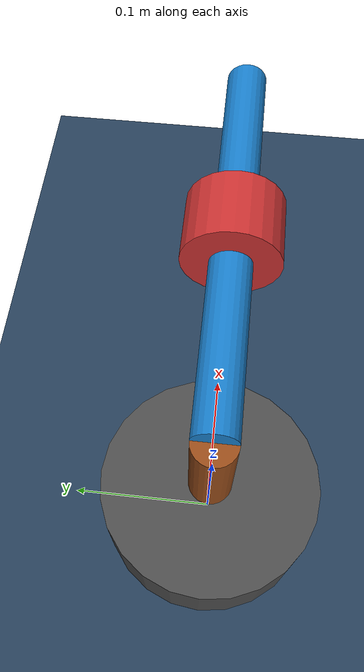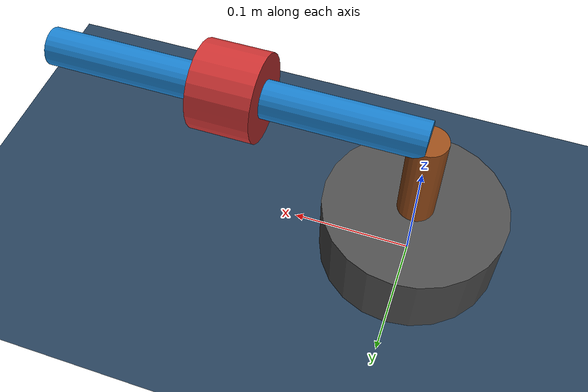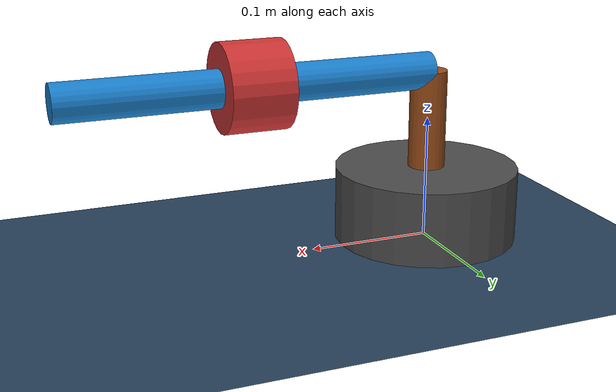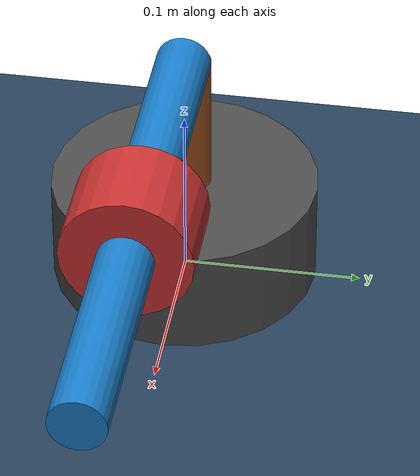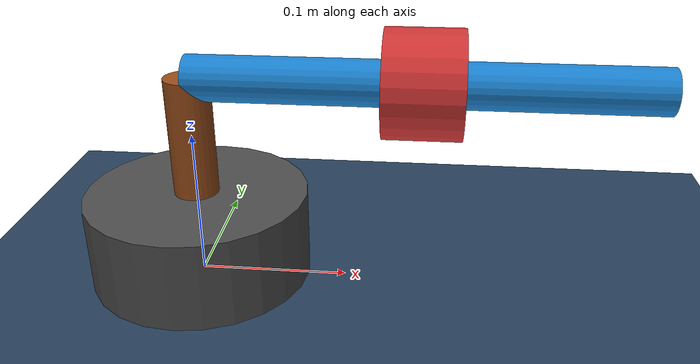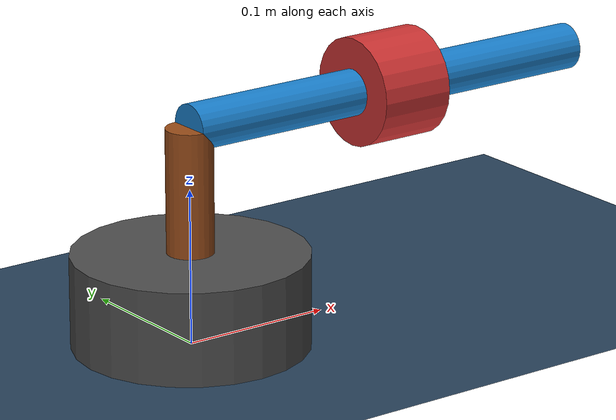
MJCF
<mujoco model="single_arm">
  <option timestep="0.001" gravity="0 0 -9.81"/>

  <asset>
    <texture name="grid" type="2d" builtin="checker" width="512" height="512" rgb1=".1 .2 .3" rgb2=".2 .3 .4"/>
    <material name="grid" texture="grid" texrepeat="1 1" texuniform="true" reflectance=".2"/>
    <material name="base_mat" rgba="0.3 0.3 0.3 1"/>
    <material name="link1_mat" rgba="0.6 0.3 0.1 1"/>
    <material name="link2_mat" rgba="0.1 0.5 0.8 1"/>
    <material name="link3_mat" rgba="0.8 0.2 0.2 1"/>
  </asset>

  <worldbody>
    <geom name="floor" type="plane" size="2 2 0.1" material="grid"/>
    <light directional="true" pos="0 0 3" dir="0 0 -1"/>

    <!-- 基座 base_link：直径0.15m(半径0.075m)，高度0.06m -->
    <body name="base_link" pos="0 0 0.03">
      <geom name="base_geom" type="cylinder" size="0.075 0.03" material="base_mat"/>

      <!-- link1：竖直圆柱，直径0.03m(半径0.015m)，高0.08m -->
      <!-- 相对base_link向上移动0.03+0.04=0.07m -->
      <body name="link1" pos="0 0 0.07">
        <joint name="joint1" type="hinge" axis="0 0 1" limited="false" damping="0.1"/>
        <geom name="link1_geom" type="cylinder" size="0.015 0.04" material="link1_mat"/>
        <inertial pos="0 0 0" mass="0.5" diaginertia="0.001 0.001 0.0001"/>

        <!-- link2：水平圆柱，直径0.03m(半径0.015m)，长0.3m -->
        <!-- 单侧放置，一端与link1上表面边缘重合 -->
        <!-- link1上表面在相对位置z=0.04，link2中心在x=0.15处 -->
        <body name="link2" pos="0.15 0 0.04">
          <geom name="link2_geom" type="cylinder" size="0.015 0.15"
                quat="0.707107 0 0.707107 0" material="link2_mat"/>
          <inertial pos="0 0 0" mass="0.6" diaginertia="0.006 0.006 0.0001"/>

          <!-- link3：水平圆柱体，直径0.07m(半径0.035m)，长0.05m -->
          <!-- 位于link2中心（质心位置），与link2共轴-->
          <body name="link3" pos="0 0 0">
            <geom name="link3_geom" type="cylinder" size="0.035 0.025"
                  quat="0.707107 0 0.707107 0" material="link3_mat"/>
            <inertial pos="0 0 0" mass="0.4" diaginertia="0.0008 0.0008 0.0002"/>
          </body>
        </body>
      </body>
    </body>
  </worldbody>

  <actuator>
    <motor name="motor1" joint="joint1" gear="1" ctrllimited="true" ctrlrange="-10 10"/>
  </actuator>

</mujoco>
